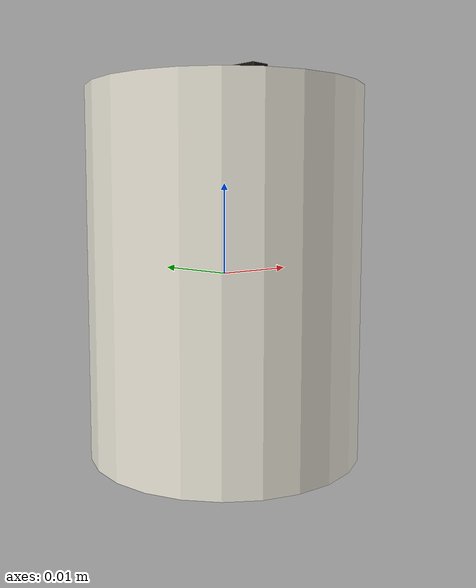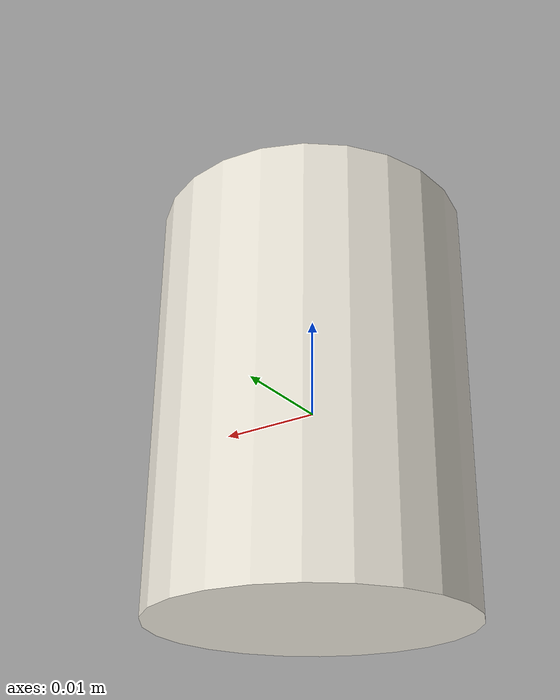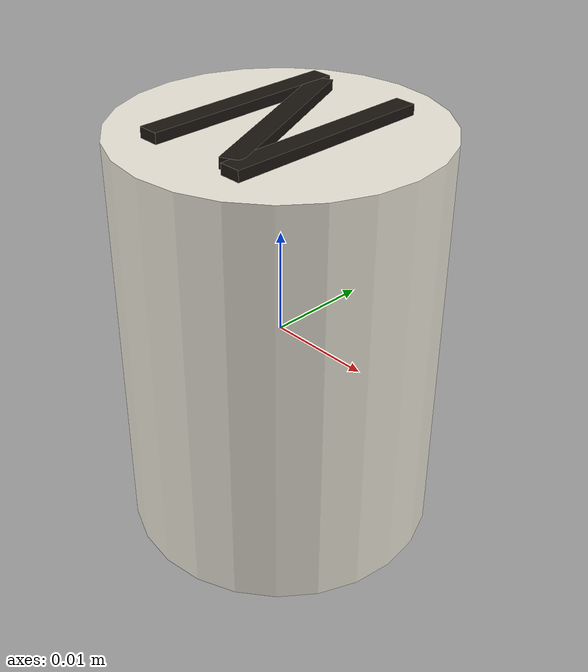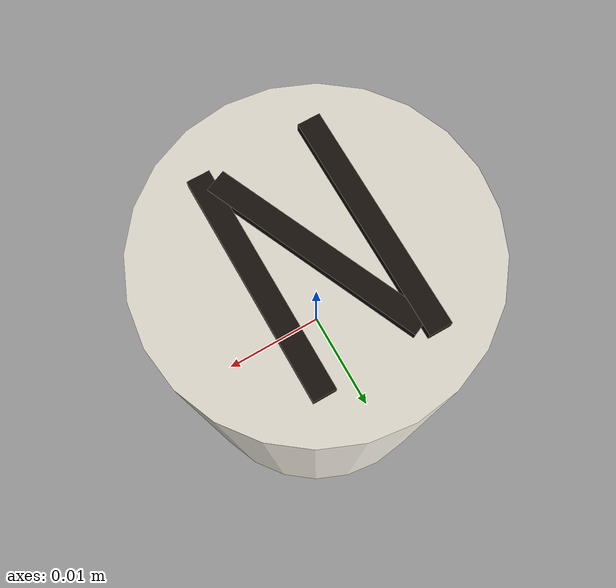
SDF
<?xml version="1.0" ?>
<sdf version="1.9">
  <model name="knight_white">
    <static>false</static>
    <pose>0 0 0 0 0 0</pose>

    <link name="link">

      <inertial>
        <mass>0.05</mass>
        <inertia>
          <ixx>0.00002</ixx>
          <iyy>0.00002</iyy>
          <izz>0.00001</izz>
        </inertia>
      </inertial>

      <collision name="collision">
        <geometry>
          <cylinder>
            <radius>0.015</radius>
            <length>0.04</length>
          </cylinder>
        </geometry>
        <surface>
          <friction>
            <ode>
              <mu>1.8</mu>
              <mu2>1.8</mu2>
            </ode>
          </friction>
        </surface>
      </collision>

      <visual name="visual">
        <geometry>
          <cylinder>
            <radius>0.015</radius>
            <length>0.04</length>
          </cylinder>
        </geometry>
        <material>
          <ambient>0.92 0.90 0.85 1</ambient>
          <diffuse>0.92 0.90 0.85 1</diffuse>
        </material>
      </visual>

      <!-- "N" imprint: two vertical sides + diagonal connecting top-left to bottom-right.
           N is the standard chess letter for knight (K is reserved for king). -->
      <visual name="letter_left">
        <pose>-0.005 0 0.0205 0 0 0</pose>
        <geometry><box><size>0.002 0.020 0.001</size></box></geometry>
        <material>
          <ambient>0.10 0.08 0.06 1</ambient>
          <diffuse>0.10 0.08 0.06 1</diffuse>
        </material>
      </visual>
      <visual name="letter_right">
        <pose>0.005 0 0.0205 0 0 0</pose>
        <geometry><box><size>0.002 0.020 0.001</size></box></geometry>
        <material>
          <ambient>0.10 0.08 0.06 1</ambient>
          <diffuse>0.10 0.08 0.06 1</diffuse>
        </material>
      </visual>
      <visual name="letter_diag">
        <pose>0 0 0.0205 0 0 -1.153</pose>
        <geometry><box><size>0.01970 0.002 0.001</size></box></geometry>
        <material>
          <ambient>0.10 0.08 0.06 1</ambient>
          <diffuse>0.10 0.08 0.06 1</diffuse>
        </material>
      </visual>

    </link>
  </model>
</sdf>
